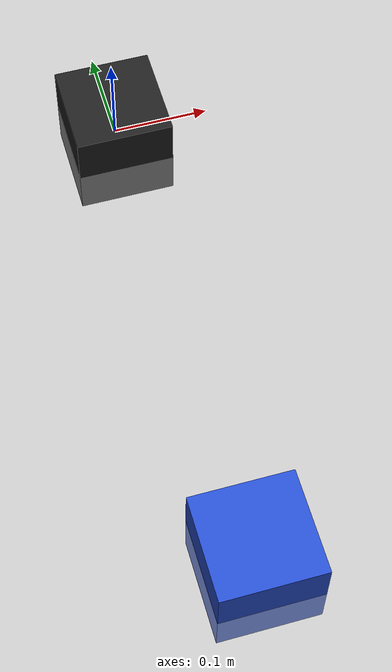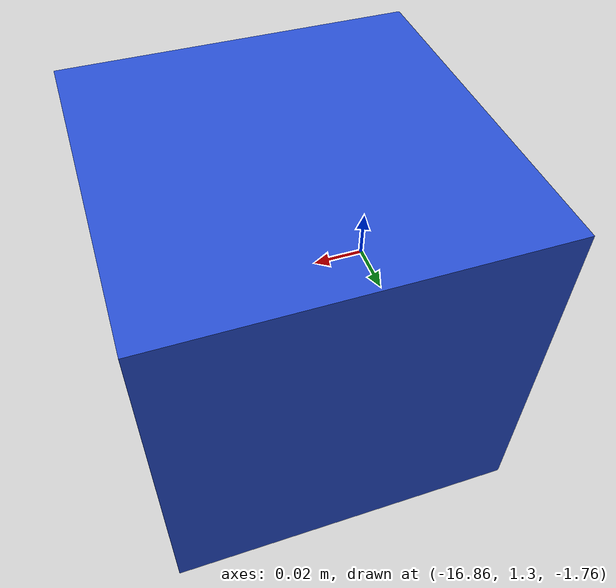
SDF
<?xml version="1.0" ?>
<sdf version="1.5">
  <world name="reveal-weaselball">
    <physics type="ode">
      <max_step_size>0.001</max_step_size>
      <real_time_factor>1</real_time_factor>
      <real_time_update_rate>1000</real_time_update_rate>
      <max_contacts>20</max_contacts>
      <simbody>
        <min_step_size>0.0001</min_step_size>
        <accuracy>0.001</accuracy>
        <max_transient_velocity>0.01</max_transient_velocity>
        <contact>
          <stiffness>1e8</stiffness>
          <dissipation>100</dissipation>
          <plastic_coef_restitution>0.5</plastic_coef_restitution>
          <plastic_impact_velocity>0.5</plastic_impact_velocity>
          <static_friction>100</static_friction>
          <dynamic_friction>100</dynamic_friction>
          <viscous_friction>0</viscous_friction>
          <override_impact_capture_velocity>0.001</override_impact_capture_velocity>
          <override_stiction_transition_velocity>0.001</override_stiction_transition_velocity>
        </contact>
      </simbody>
      <bullet>
        <solver>
          <type>sequential_impulse</type>
          <min_step_size>0.0001</min_step_size>
          <iters>50</iters>
          <sor>1.3</sor>
        </solver>
        <constraints>
          <cfm>0.0</cfm>
          <erp>0.2</erp>
          <contact_surface_layer>0.001</contact_surface_layer>
          <split_impulse>1</split_impulse>
          <split_impulse_penetration_threshold>-0.01</split_impulse_penetration_threshold>
        </constraints>
      </bullet>
      <ode>
        <solver>
          <type>quick</type>
          <min_step_size>0.0001</min_step_size>
          <iters>500</iters>
          <sor>1.0</sor>
        </solver>
        <constraints>
          <cfm>0.0</cfm>
          <erp>0.2</erp>
          <contact_max_correcting_vel>100</contact_max_correcting_vel>
          <contact_surface_layer>0.001</contact_surface_layer>
        </constraints>
      </ode>
    </physics>
    <include>
      <uri>model://sun</uri>
    </include>
    <include>
      <uri>model://ground_plane</uri>
    </include>
    <include>
      <uri>model://weazelball</uri>
      <pose>0 0 0 0 0 0</pose>
    </include>
    <gui>
      <camera name='user_camera'>
        <pose>2.40589 1.41487 2.42008 -1.63904e-18 0.551643 -2.54699</pose>
        <view_controller>orbit</view_controller>
      </camera>
    </gui>
    <plugin name="world-plugin" filename="libworld-plugin.so"/>
  </world>
</sdf>

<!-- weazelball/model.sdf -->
<sdf version="1.4">
  <model name="weazelball">
    <link name="shell">
      <!-- shell -->
      <pose>0 -0.5 0 0 0 0</pose>
      <gravity>0</gravity>
      <inertial>
        <pose>0 0 0 0 0 0</pose>
        <inertia>
          <ixx>0.0016667</ixx>
          <ixy>0</ixy>
          <ixz>0</ixz>
          <iyy>0.0016667</iyy>
          <iyz>0</iyz>
          <izz>0.0016667</izz>
        </inertia>
        <mass>1.0</mass>
      </inertial>
      <collision name="shell_col">
        <pose>0 0 0 0 0 0</pose>
        <geometry>
          <box>
            <size>0.1 0.1 0.1</size>
          </box>
        </geometry>
      </collision>
      <visual name="shell_vis">
        <pose>0 0 0 0 0 0</pose>
        <geometry>
          <box>
            <size>0.1 0.1 0.1</size>
          </box>
        </geometry>
        <material>
          <script>
            <uri>file://media/materials/scripts/gazebo.material</uri>
            <name>Gazebo/Blue</name>
          </script>
        </material>
      </visual>
    </link>
    <link name="axel">
      <!-- cylinder -->
      <pose>0 -0.5 0 0 0 0</pose>
      <gravity>0</gravity>
      <inertial>
        <pose>0 0 0 0 0 0</pose>
        <inertia>
          <ixx>0.0016667</ixx>
          <ixy>0</ixy>
          <ixz>0</ixz>
          <iyy>0.0016667</iyy>
          <iyz>0</iyz>
          <izz>0.0016667</izz>
        </inertia>
        <mass>1.0</mass>
      </inertial>
      <collision name="axel_col">
        <pose>0 0 0 0 0 0</pose>
        <geometry>
          <box>
            <size>0.1 0.1 0.1</size>
          </box>
        </geometry>
      </collision>
      <visual name="axel_vis">
        <pose>0 0 0 0 0 0</pose>
        <geometry>
          <box>
            <size>0.1 0.1 0.1</size>
          </box>
        </geometry>
        <material>
          <script>
            <uri>file://media/materials/scripts/gazebo.material</uri>
            <name>Gazebo/Blue</name>
          </script>
        </material>
      </visual>
    </link>
    <link name="motor">
      <pose>-16.81 1.36 -1.70 0 0 0</pose>  <!-- com of motor (mm) -->
      <gravity>0</gravity>
      <!-- com and aligned with output coordinate system (g * mm^2) -->
      <inertial>
        <pose>0 0 0 0 0 0</pose>
        <inertia>
          <ixx>21496.76</ixx>
          <ixy>2244.48</ixy>
          <ixz>-1273.49</ixz>
          <iyy>21121.72</iyy>
          <iyz>418.27</iyz>
          <izz>25313.89</izz>
        </inertia>
      <!-- at output coordinate system (g * mm^2) -->
        <mass>85</mass>
      </inertial>
      <collision name="motor_col">
        <pose>0 0 0 0 0 0</pose>
        <geometry>
          <box>
            <size>0.1 0.1 0.1</size>
          </box>
        </geometry>
      </collision>
      <visual name="motor_vis">
        <pose>0 0 0 0 0 0</pose>
        <geometry>
          <box>
            <size>0.1 0.1 0.1</size>
          </box>
        </geometry>
        <material>
          <script>
            <uri>file://media/materials/scripts/gazebo.material</uri>
            <name>Gazebo/Blue</name>
          </script>
        </material>
      </visual>
    </link>
    <link name="gasket">
      <!-- torus -->
      <pose>0 0 0 0 0 0</pose>
      <gravity>0</gravity>
      <inertial>
        <pose>0 0 0 0 0 0</pose>
        <inertia>
          <ixx>0</ixx>
          <ixy>0</ixy>
          <ixz>0</ixz>
          <iyy>0</iyy>
          <iyz>0</iyz>
          <izz>0</izz>
        </inertia>
        <mass>0</mass>
      </inertial>
      <collision name="gasket_col">
        <pose>0 0 0 0 0 0</pose>
        <geometry>
          <box>
            <size>0.1 0.1 0.1</size>
          </box>
        </geometry>
      </collision>
      <visual name="gasket_vis">
        <pose>0 0 0 0 0 0</pose>
        <geometry>
          <box>
            <size>0.1 0.1 0.1</size>
          </box>
        </geometry>
        <material>
          <script>
            <uri>file://media/materials/scripts/gazebo.material</uri>
            <name>Gazebo/Black</name>
          </script>
        </material>
      </visual>
    </link>

    <!-- fixed joint joining axel to shell -->
    <!-- fixed joint joining gasket to shell -->
    <joint name="actuator" type="revolute">
      <parent>shell</parent>
      <child>motor</child>
      <axis>
        <dynamics>
          <damping>0.0</damping>
          <friction>0.0</friction>
        </dynamics>
        <xyz>0 1 0</xyz>
      </axis>
    </joint>

    <plugin name='controller' filename='libcontroller.so'>
    </plugin>

  </model>
</sdf>
